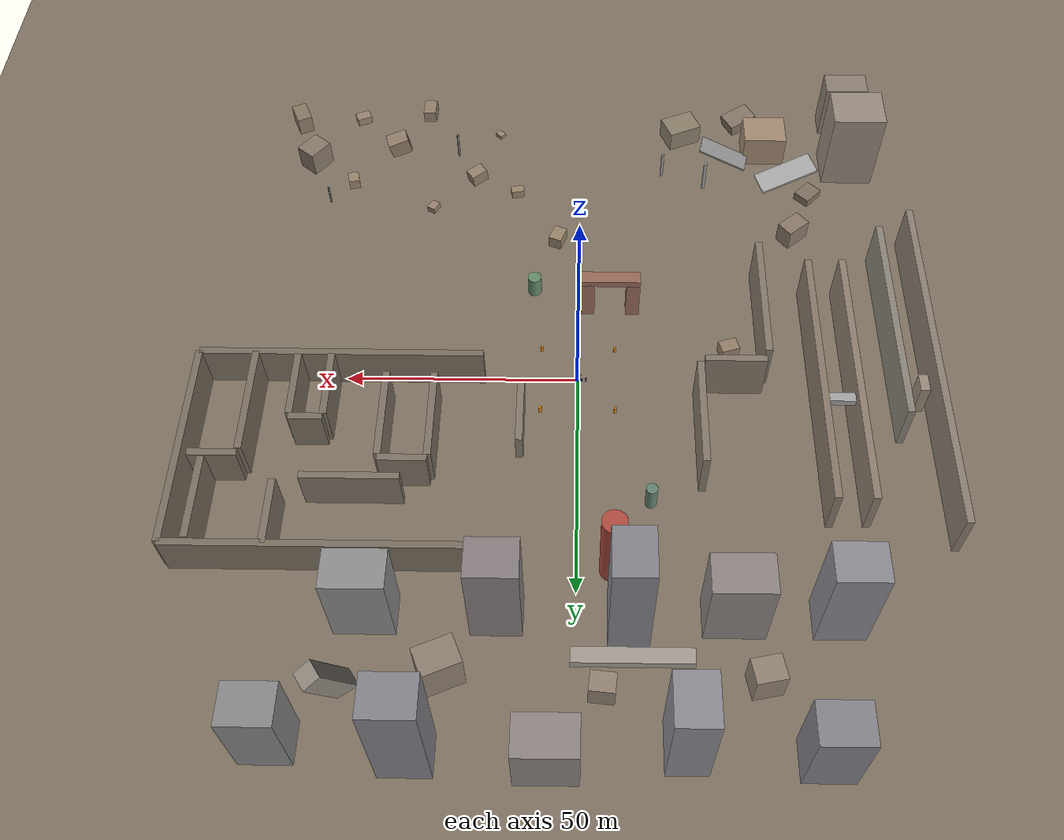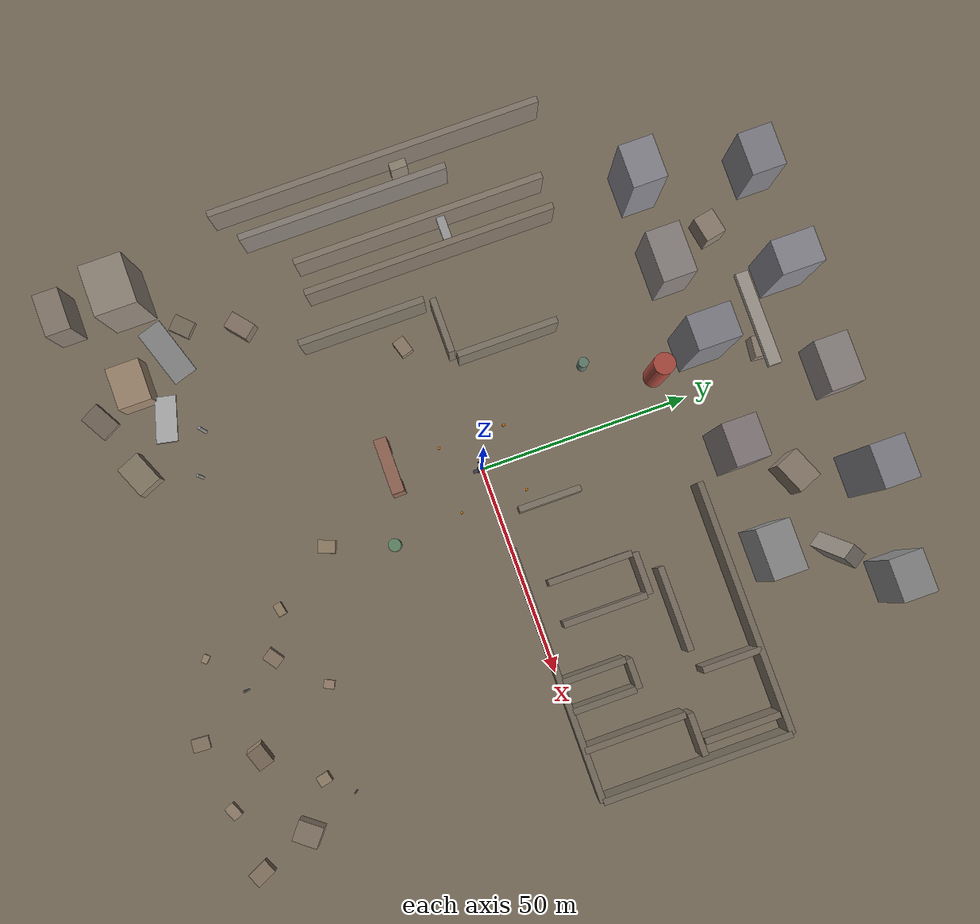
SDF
<?xml version="1.0" encoding="UTF-8"?>
<sdf version="1.9">
  <world name="disaster_response">
    <physics type="ode">
      <max_step_size>0.004</max_step_size>
      <real_time_factor>1.0</real_time_factor>
      <real_time_update_rate>250</real_time_update_rate>
    </physics>
    <!-- Required Gazebo Harmonic system plugins -->
    <plugin filename="gz-sim-physics-system" name="gz::sim::systems::Physics"/>
    <plugin filename="gz-sim-scene-broadcaster-system" name="gz::sim::systems::SceneBroadcaster"/>
    <plugin filename="gz-sim-user-commands-system" name="gz::sim::systems::UserCommands"/>
    <plugin filename="gz-sim-sensors-system" name="gz::sim::systems::Sensors">
      <render_engine>ogre2</render_engine>
    </plugin>
    <plugin filename="gz-sim-imu-system" name="gz::sim::systems::Imu"/>
    <plugin filename="gz-sim-contact-system" name="gz::sim::systems::Contact"/>

    <gravity>0 0 -9.8</gravity>
    <magnetic_field>6e-06 2.3e-05 -4.2e-05</magnetic_field>
    <atmosphere type="adiabatic"/>
    <scene>
      <grid>false</grid>
      <ambient>0.4 0.4 0.4 1</ambient>
      <background>0.7 0.7 0.7 1</background>
      <shadows>true</shadows>
    </scene>
    <light name="sunUTC" type="directional">
      <pose>0 0 500 0 -0 0</pose>
      <cast_shadows>true</cast_shadows>
      <intensity>0.9</intensity>
      <direction>0.3 0.5 -0.78</direction>
      <diffuse>0.88 0.85 0.80 1</diffuse>
      <specular>0.25 0.25 0.25 1</specular>
      <attenuation>
        <range>2000</range>
        <linear>0</linear>
        <constant>1</constant>
        <quadratic>0</quadratic>
      </attenuation>
      <spot>
        <inner_angle>0</inner_angle>
        <outer_angle>0</outer_angle>
        <falloff>0</falloff>
      </spot>
    </light>
    <spherical_coordinates>
      <surface_model>EARTH_WGS84</surface_model>
      <world_frame_orientation>ENU</world_frame_orientation>
      <latitude_deg>47.397971057728974</latitude_deg>
      <longitude_deg> 8.546163739800146</longitude_deg>
      <elevation>0</elevation>
    </spherical_coordinates>
    <model name="ground_plane">
      <static>true</static>
      <link name="link">
        <collision name="collision">
          <geometry>
            <plane>
              <normal>0 0 1</normal>
              <size>1 1</size>
            </plane>
          </geometry>
          <surface>
            <friction>
              <ode/>
            </friction>
            <bounce/>
            <contact/>
          </surface>
        </collision>
        <visual name="visual">
          <geometry>
            <plane>
              <normal>0 0 1</normal>
              <size>200 200</size>
            </plane>
          </geometry>
          <material>
            <ambient>0.45 0.40 0.35 1</ambient>
            <diffuse>0.50 0.45 0.38 1</diffuse>
            <specular>0.1 0.1 0.1 1</specular>
          </material>
        </visual>
        <pose>0 0 0 0 -0 0</pose>
        <inertial>
          <pose>0 0 0 0 -0 0</pose>
          <mass>1</mass>
          <inertia>
            <ixx>1</ixx>
            <ixy>0</ixy>
            <ixz>0</ixz>
            <iyy>1</iyy>
            <iyz>0</iyz>
            <izz>1</izz>
          </inertia>
        </inertial>
        <enable_wind>false</enable_wind>
      </link>
      <pose>0 0 0 0 -0 0</pose>
      <self_collide>false</self_collide>
    </model>

    <model name="spawn_pylon_ne">
      <pose>8 8 0.75 0 0 0</pose>
      <static>true</static>
      <link name="link">
      <collision name="collision">
        <geometry>
          <cylinder>
            <radius>0.3</radius>
            <length>1.5</length>
          </cylinder>
        </geometry>
      </collision>
      <visual name="visual">
        <geometry>
          <cylinder>
            <radius>0.3</radius>
            <length>1.5</length>
          </cylinder>
        </geometry>
        <material>
          <ambient>0.9 0.5 0.0 1</ambient>
          <diffuse>0.9 0.5 0.0 1</diffuse>
          <specular>0.5 0.5 0.5 1</specular>
        </material>
      </visual>
      </link>
    </model>
    <model name="spawn_pylon_nw">
      <pose>-8 8 0.75 0 0 0</pose>
      <static>true</static>
      <link name="link">
      <collision name="collision">
        <geometry>
          <cylinder>
            <radius>0.3</radius>
            <length>1.5</length>
          </cylinder>
        </geometry>
      </collision>
      <visual name="visual">
        <geometry>
          <cylinder>
            <radius>0.3</radius>
            <length>1.5</length>
          </cylinder>
        </geometry>
        <material>
          <ambient>0.9 0.5 0.0 1</ambient>
          <diffuse>0.9 0.5 0.0 1</diffuse>
          <specular>0.5 0.5 0.5 1</specular>
        </material>
      </visual>
      </link>
    </model>
    <model name="spawn_pylon_se">
      <pose>8 -8 0.75 0 0 0</pose>
      <static>true</static>
      <link name="link">
      <collision name="collision">
        <geometry>
          <cylinder>
            <radius>0.3</radius>
            <length>1.5</length>
          </cylinder>
        </geometry>
      </collision>
      <visual name="visual">
        <geometry>
          <cylinder>
            <radius>0.3</radius>
            <length>1.5</length>
          </cylinder>
        </geometry>
        <material>
          <ambient>0.9 0.5 0.0 1</ambient>
          <diffuse>0.9 0.5 0.0 1</diffuse>
          <specular>0.5 0.5 0.5 1</specular>
        </material>
      </visual>
      </link>
    </model>
    <model name="spawn_pylon_sw">
      <pose>-8 -8 0.75 0 0 0</pose>
      <static>true</static>
      <link name="link">
      <collision name="collision">
        <geometry>
          <cylinder>
            <radius>0.3</radius>
            <length>1.5</length>
          </cylinder>
        </geometry>
      </collision>
      <visual name="visual">
        <geometry>
          <cylinder>
            <radius>0.3</radius>
            <length>1.5</length>
          </cylinder>
        </geometry>
        <material>
          <ambient>0.9 0.5 0.0 1</ambient>
          <diffuse>0.9 0.5 0.0 1</diffuse>
          <specular>0.5 0.5 0.5 1</specular>
        </material>
      </visual>
      </link>
    </model>
    <model name="z1_building_a">
      <pose>-65 -65 10 0 0 0</pose>
      <static>true</static>
      <link name="link">
      <collision name="collision">
        <geometry>
          <box>
            <size>12 10 20</size>
          </box>
        </geometry>
      </collision>
      <visual name="visual">
        <geometry>
          <box>
            <size>12 10 20</size>
          </box>
        </geometry>
        <material>
          <ambient>0.5 0.45 0.4 1</ambient>
          <diffuse>0.6 0.55 0.5 1</diffuse>
          <specular>0.3 0.3 0.3 1</specular>
        </material>
      </visual>
      </link>
    </model>
    <model name="z1_building_b">
      <pose>-45 -70 4 0 0 0</pose>
      <static>true</static>
      <link name="link">
      <collision name="collision">
        <geometry>
          <box>
            <size>10 8 8</size>
          </box>
        </geometry>
      </collision>
      <visual name="visual">
        <geometry>
          <box>
            <size>10 8 8</size>
          </box>
        </geometry>
        <material>
          <ambient>0.55 0.48 0.40 1</ambient>
          <diffuse>0.65 0.55 0.45 1</diffuse>
          <specular>0.2 0.2 0.2 1</specular>
        </material>
      </visual>
      </link>
    </model>
    <model name="z1_building_c">
      <pose>-65 -80 7 0 0 0</pose>
      <static>true</static>
      <link name="link">
      <collision name="collision">
        <geometry>
          <box>
            <size>10 6 14</size>
          </box>
        </geometry>
      </collision>
      <visual name="visual">
        <geometry>
          <box>
            <size>10 6 14</size>
          </box>
        </geometry>
        <material>
          <ambient>0.4 0.38 0.35 1</ambient>
          <diffuse>0.55 0.50 0.45 1</diffuse>
          <specular>0.3 0.3 0.3 1</specular>
        </material>
      </visual>
      </link>
    </model>
    <model name="z1_collapsed_slab_1">
      <pose>-50 -60 3 0 0.26 0.3</pose>
      <static>true</static>
      <link name="link">
      <collision name="collision">
        <geometry>
          <box>
            <size>14 6 0.5</size>
          </box>
        </geometry>
      </collision>
      <visual name="visual">
        <geometry>
          <box>
            <size>14 6 0.5</size>
          </box>
        </geometry>
        <material>
          <ambient>0.5 0.5 0.5 1</ambient>
          <diffuse>0.65 0.65 0.65 1</diffuse>
          <specular>0.4 0.4 0.4 1</specular>
        </material>
      </visual>
      </link>
    </model>
    <model name="z1_collapsed_slab_2">
      <pose>-35 -65 4.5 0 -0.35 -0.2</pose>
      <static>true</static>
      <link name="link">
      <collision name="collision">
        <geometry>
          <box>
            <size>12 5 0.4</size>
          </box>
        </geometry>
      </collision>
      <visual name="visual">
        <geometry>
          <box>
            <size>12 5 0.4</size>
          </box>
        </geometry>
        <material>
          <ambient>0.5 0.5 0.5 1</ambient>
          <diffuse>0.65 0.65 0.65 1</diffuse>
          <specular>0.4 0.4 0.4 1</specular>
        </material>
      </visual>
      </link>
    </model>
    <model name="z1_building_d">
      <pose>-25 -75 2.5 0 0 0.4</pose>
      <static>true</static>
      <link name="link">
      <collision name="collision">
        <geometry>
          <box>
            <size>8 6 5</size>
          </box>
        </geometry>
      </collision>
      <visual name="visual">
        <geometry>
          <box>
            <size>8 6 5</size>
          </box>
        </geometry>
        <material>
          <ambient>0.45 0.40 0.35 1</ambient>
          <diffuse>0.55 0.50 0.42 1</diffuse>
          <specular>0.2 0.2 0.2 1</specular>
        </material>
      </visual>
      </link>
    </model>
    <model name="z1_debris_1">
      <pose>-55 -55 1.0 0 0 0.8</pose>
      <static>true</static>
      <link name="link">
      <collision name="collision">
        <geometry>
          <box>
            <size>5 4 2</size>
          </box>
        </geometry>
      </collision>
      <visual name="visual">
        <geometry>
          <box>
            <size>5 4 2</size>
          </box>
        </geometry>
        <material>
          <ambient>0.4 0.38 0.33 1</ambient>
          <diffuse>0.5 0.45 0.38 1</diffuse>
          <specular>0.15 0.15 0.15 1</specular>
        </material>
      </visual>
      </link>
    </model>
    <model name="z1_debris_2">
      <pose>-40 -80 1.5 0 0.15 0.5</pose>
      <static>true</static>
      <link name="link">
      <collision name="collision">
        <geometry>
          <box>
            <size>7 5 3</size>
          </box>
        </geometry>
      </collision>
      <visual name="visual">
        <geometry>
          <box>
            <size>7 5 3</size>
          </box>
        </geometry>
        <material>
          <ambient>0.42 0.38 0.34 1</ambient>
          <diffuse>0.52 0.46 0.40 1</diffuse>
          <specular>0.15 0.15 0.15 1</specular>
        </material>
      </visual>
      </link>
    </model>
    <model name="z1_column_1">
      <pose>-30 -58 4 0 0 0</pose>
      <static>true</static>
      <link name="link">
      <collision name="collision">
        <geometry>
          <cylinder>
            <radius>0.4</radius>
            <length>8</length>
          </cylinder>
        </geometry>
      </collision>
      <visual name="visual">
        <geometry>
          <cylinder>
            <radius>0.4</radius>
            <length>8</length>
          </cylinder>
        </geometry>
        <material>
          <ambient>0.5 0.5 0.5 1</ambient>
          <diffuse>0.6 0.6 0.6 1</diffuse>
          <specular>0.3 0.3 0.3 1</specular>
        </material>
      </visual>
      </link>
    </model>
    <model name="z1_column_2">
      <pose>-20 -62 3.5 0 0 0</pose>
      <static>true</static>
      <link name="link">
      <collision name="collision">
        <geometry>
          <cylinder>
            <radius>0.35</radius>
            <length>7</length>
          </cylinder>
        </geometry>
      </collision>
      <visual name="visual">
        <geometry>
          <cylinder>
            <radius>0.35</radius>
            <length>7</length>
          </cylinder>
        </geometry>
        <material>
          <ambient>0.48 0.48 0.48 1</ambient>
          <diffuse>0.58 0.58 0.58 1</diffuse>
          <specular>0.3 0.3 0.3 1</specular>
        </material>
      </visual>
      </link>
    </model>
    <model name="z2_rubble_01">
      <pose>15 -55 1.0 0 0 0.2</pose>
      <static>true</static>
      <link name="link">
      <collision name="collision">
        <geometry>
          <box>
            <size>3 2 2</size>
          </box>
        </geometry>
      </collision>
      <visual name="visual">
        <geometry>
          <box>
            <size>3 2 2</size>
          </box>
        </geometry>
        <material>
          <ambient>0.5 0.42 0.35 1</ambient>
          <diffuse>0.6 0.52 0.42 1</diffuse>
          <specular>0.15 0.15 0.15 1</specular>
        </material>
      </visual>
      </link>
    </model>
    <model name="z2_rubble_02">
      <pose>25 -60 1.5 0 0.1 0.6</pose>
      <static>true</static>
      <link name="link">
      <collision name="collision">
        <geometry>
          <box>
            <size>4 3 3</size>
          </box>
        </geometry>
      </collision>
      <visual name="visual">
        <geometry>
          <box>
            <size>4 3 3</size>
          </box>
        </geometry>
        <material>
          <ambient>0.48 0.42 0.36 1</ambient>
          <diffuse>0.58 0.50 0.42 1</diffuse>
          <specular>0.15 0.15 0.15 1</specular>
        </material>
      </visual>
      </link>
    </model>
    <model name="z2_rubble_03">
      <pose>35 -50 0.75 0 0 1.1</pose>
      <static>true</static>
      <link name="link">
      <collision name="collision">
        <geometry>
          <box>
            <size>2.5 2 1.5</size>
          </box>
        </geometry>
      </collision>
      <visual name="visual">
        <geometry>
          <box>
            <size>2.5 2 1.5</size>
          </box>
        </geometry>
        <material>
          <ambient>0.52 0.45 0.38 1</ambient>
          <diffuse>0.62 0.52 0.44 1</diffuse>
          <specular>0.15 0.15 0.15 1</specular>
        </material>
      </visual>
      </link>
    </model>
    <model name="z2_rubble_04">
      <pose>45 -70 2.0 0 0.2 0.3</pose>
      <static>true</static>
      <link name="link">
      <collision name="collision">
        <geometry>
          <box>
            <size>5 4 4</size>
          </box>
        </geometry>
      </collision>
      <visual name="visual">
        <geometry>
          <box>
            <size>5 4 4</size>
          </box>
        </geometry>
        <material>
          <ambient>0.46 0.40 0.34 1</ambient>
          <diffuse>0.56 0.48 0.40 1</diffuse>
          <specular>0.15 0.15 0.15 1</specular>
        </material>
      </visual>
      </link>
    </model>
    <model name="z2_rubble_05">
      <pose>55 -58 1.25 0 0 1.8</pose>
      <static>true</static>
      <link name="link">
      <collision name="collision">
        <geometry>
          <box>
            <size>3 2.5 2.5</size>
          </box>
        </geometry>
      </collision>
      <visual name="visual">
        <geometry>
          <box>
            <size>3 2.5 2.5</size>
          </box>
        </geometry>
        <material>
          <ambient>0.50 0.44 0.37 1</ambient>
          <diffuse>0.60 0.52 0.43 1</diffuse>
          <specular>0.15 0.15 0.15 1</specular>
        </material>
      </visual>
      </link>
    </model>
    <model name="z2_rubble_06">
      <pose>65 -65 3.0 0 0 0.9</pose>
      <static>true</static>
      <link name="link">
      <collision name="collision">
        <geometry>
          <box>
            <size>6 5 6</size>
          </box>
        </geometry>
      </collision>
      <visual name="visual">
        <geometry>
          <box>
            <size>6 5 6</size>
          </box>
        </geometry>
        <material>
          <ambient>0.44 0.40 0.35 1</ambient>
          <diffuse>0.54 0.48 0.42 1</diffuse>
          <specular>0.15 0.15 0.15 1</specular>
        </material>
      </visual>
      </link>
    </model>
    <model name="z2_rubble_07">
      <pose>20 -75 0.5 0 0 2.4</pose>
      <static>true</static>
      <link name="link">
      <collision name="collision">
        <geometry>
          <box>
            <size>2 1.5 1</size>
          </box>
        </geometry>
      </collision>
      <visual name="visual">
        <geometry>
          <box>
            <size>2 1.5 1</size>
          </box>
        </geometry>
        <material>
          <ambient>0.52 0.46 0.38 1</ambient>
          <diffuse>0.62 0.54 0.44 1</diffuse>
          <specular>0.15 0.15 0.15 1</specular>
        </material>
      </visual>
      </link>
    </model>
    <model name="z2_rubble_08">
      <pose>38 -82 1.75 0 0.15 1.5</pose>
      <static>true</static>
      <link name="link">
      <collision name="collision">
        <geometry>
          <box>
            <size>4 3 3.5</size>
          </box>
        </geometry>
      </collision>
      <visual name="visual">
        <geometry>
          <box>
            <size>4 3 3.5</size>
          </box>
        </geometry>
        <material>
          <ambient>0.47 0.42 0.36 1</ambient>
          <diffuse>0.57 0.50 0.42 1</diffuse>
          <specular>0.15 0.15 0.15 1</specular>
        </material>
      </visual>
      </link>
    </model>
    <model name="z2_rubble_09">
      <pose>55 -80 1.0 0 0 0.4</pose>
      <static>true</static>
      <link name="link">
      <collision name="collision">
        <geometry>
          <box>
            <size>3.5 2.5 2</size>
          </box>
        </geometry>
      </collision>
      <visual name="visual">
        <geometry>
          <box>
            <size>3.5 2.5 2</size>
          </box>
        </geometry>
        <material>
          <ambient>0.50 0.44 0.38 1</ambient>
          <diffuse>0.60 0.52 0.44 1</diffuse>
          <specular>0.15 0.15 0.15 1</specular>
        </material>
      </visual>
      </link>
    </model>
    <model name="z2_rubble_10">
      <pose>70 -78 2.5 0 0.1 2.0</pose>
      <static>true</static>
      <link name="link">
      <collision name="collision">
        <geometry>
          <box>
            <size>5 3.5 5</size>
          </box>
        </geometry>
      </collision>
      <visual name="visual">
        <geometry>
          <box>
            <size>5 3.5 5</size>
          </box>
        </geometry>
        <material>
          <ambient>0.45 0.40 0.34 1</ambient>
          <diffuse>0.55 0.48 0.40 1</diffuse>
          <specular>0.15 0.15 0.15 1</specular>
        </material>
      </visual>
      </link>
    </model>
    <model name="z2_pole_1">
      <pose>30 -68 3.5 0 0 0</pose>
      <static>true</static>
      <link name="link">
      <collision name="collision">
        <geometry>
          <cylinder>
            <radius>0.25</radius>
            <length>7</length>
          </cylinder>
        </geometry>
      </collision>
      <visual name="visual">
        <geometry>
          <cylinder>
            <radius>0.25</radius>
            <length>7</length>
          </cylinder>
        </geometry>
        <material>
          <ambient>0.35 0.35 0.35 1</ambient>
          <diffuse>0.45 0.45 0.45 1</diffuse>
          <specular>0.3 0.3 0.3 1</specular>
        </material>
      </visual>
      </link>
    </model>
    <model name="z2_pole_2">
      <pose>60 -52 2.5 0 0 0</pose>
      <static>true</static>
      <link name="link">
      <collision name="collision">
        <geometry>
          <cylinder>
            <radius>0.2</radius>
            <length>5</length>
          </cylinder>
        </geometry>
      </collision>
      <visual name="visual">
        <geometry>
          <cylinder>
            <radius>0.2</radius>
            <length>5</length>
          </cylinder>
        </geometry>
        <material>
          <ambient>0.35 0.35 0.35 1</ambient>
          <diffuse>0.45 0.45 0.45 1</diffuse>
          <specular>0.3 0.3 0.3 1</specular>
        </material>
      </visual>
      </link>
    </model>
    <model name="z3_wall_west">
      <pose>-75 0 6 0 0 0</pose>
      <static>true</static>
      <link name="link">
      <collision name="collision">
        <geometry>
          <box>
            <size>1.5 80 12</size>
          </box>
        </geometry>
      </collision>
      <visual name="visual">
        <geometry>
          <box>
            <size>1.5 80 12</size>
          </box>
        </geometry>
        <material>
          <ambient>0.4 0.38 0.35 1</ambient>
          <diffuse>0.55 0.50 0.45 1</diffuse>
          <specular>0.2 0.2 0.2 1</specular>
        </material>
      </visual>
      </link>
    </model>
    <model name="z3_wall_c1_east">
      <pose>-67.5 -10 6 0 0 0</pose>
      <static>true</static>
      <link name="link">
      <collision name="collision">
        <geometry>
          <box>
            <size>1.5 50 12</size>
          </box>
        </geometry>
      </collision>
      <visual name="visual">
        <geometry>
          <box>
            <size>1.5 50 12</size>
          </box>
        </geometry>
        <material>
          <ambient>0.42 0.40 0.37 1</ambient>
          <diffuse>0.55 0.52 0.48 1</diffuse>
          <specular>0.2 0.2 0.2 1</specular>
        </material>
      </visual>
      </link>
    </model>
    <model name="z3_chicane_1">
      <pose>-72.5 5 4 0 0 0</pose>
      <static>true</static>
      <link name="link">
      <collision name="collision">
        <geometry>
          <box>
            <size>2 4 8</size>
          </box>
        </geometry>
      </collision>
      <visual name="visual">
        <geometry>
          <box>
            <size>2 4 8</size>
          </box>
        </geometry>
        <material>
          <ambient>0.5 0.45 0.40 1</ambient>
          <diffuse>0.6 0.55 0.48 1</diffuse>
          <specular>0.2 0.2 0.2 1</specular>
        </material>
      </visual>
      </link>
    </model>
    <model name="z3_wall_c2_west">
      <pose>-58 5 6 0 0 0</pose>
      <static>true</static>
      <link name="link">
      <collision name="collision">
        <geometry>
          <box>
            <size>1.5 60 12</size>
          </box>
        </geometry>
      </collision>
      <visual name="visual">
        <geometry>
          <box>
            <size>1.5 60 12</size>
          </box>
        </geometry>
        <material>
          <ambient>0.44 0.40 0.36 1</ambient>
          <diffuse>0.56 0.50 0.44 1</diffuse>
          <specular>0.2 0.2 0.2 1</specular>
        </material>
      </visual>
      </link>
    </model>
    <model name="z3_wall_c2_east">
      <pose>-50.5 5 6 0 0 0</pose>
      <static>true</static>
      <link name="link">
      <collision name="collision">
        <geometry>
          <box>
            <size>1.5 60 12</size>
          </box>
        </geometry>
      </collision>
      <visual name="visual">
        <geometry>
          <box>
            <size>1.5 60 12</size>
          </box>
        </geometry>
        <material>
          <ambient>0.42 0.39 0.35 1</ambient>
          <diffuse>0.54 0.48 0.42 1</diffuse>
          <specular>0.2 0.2 0.2 1</specular>
        </material>
      </visual>
      </link>
    </model>
    <model name="z3_overhead_beam">
      <pose>-54.25 10 9 0 0 0</pose>
      <static>true</static>
      <link name="link">
      <collision name="collision">
        <geometry>
          <box>
            <size>6 2 1.5</size>
          </box>
        </geometry>
      </collision>
      <visual name="visual">
        <geometry>
          <box>
            <size>6 2 1.5</size>
          </box>
        </geometry>
        <material>
          <ambient>0.5 0.5 0.5 1</ambient>
          <diffuse>0.65 0.65 0.65 1</diffuse>
          <specular>0.4 0.4 0.4 1</specular>
        </material>
      </visual>
      </link>
    </model>
    <model name="z3_wall_c3_south">
      <pose>-40 -15 6 0 0 0</pose>
      <static>true</static>
      <link name="link">
      <collision name="collision">
        <geometry>
          <box>
            <size>1.5 30 12</size>
          </box>
        </geometry>
      </collision>
      <visual name="visual">
        <geometry>
          <box>
            <size>1.5 30 12</size>
          </box>
        </geometry>
        <material>
          <ambient>0.40 0.38 0.34 1</ambient>
          <diffuse>0.52 0.48 0.42 1</diffuse>
          <specular>0.2 0.2 0.2 1</specular>
        </material>
      </visual>
      </link>
    </model>
    <model name="z3_wall_c3_corner">
      <pose>-33 2 6 0 0 0</pose>
      <static>true</static>
      <link name="link">
      <collision name="collision">
        <geometry>
          <box>
            <size>13 1.5 12</size>
          </box>
        </geometry>
      </collision>
      <visual name="visual">
        <geometry>
          <box>
            <size>13 1.5 12</size>
          </box>
        </geometry>
        <material>
          <ambient>0.40 0.38 0.34 1</ambient>
          <diffuse>0.52 0.48 0.42 1</diffuse>
          <specular>0.2 0.2 0.2 1</specular>
        </material>
      </visual>
      </link>
    </model>
    <model name="z3_wall_c3_north">
      <pose>-25.5 15 6 0 0 0</pose>
      <static>true</static>
      <link name="link">
      <collision name="collision">
        <geometry>
          <box>
            <size>1.5 24 12</size>
          </box>
        </geometry>
      </collision>
      <visual name="visual">
        <geometry>
          <box>
            <size>1.5 24 12</size>
          </box>
        </geometry>
        <material>
          <ambient>0.40 0.38 0.34 1</ambient>
          <diffuse>0.52 0.48 0.42 1</diffuse>
          <specular>0.2 0.2 0.2 1</specular>
        </material>
      </visual>
      </link>
    </model>
    <model name="z3_corridor_rubble">
      <pose>-33 -8 1.5 0 0 0.3</pose>
      <static>true</static>
      <link name="link">
      <collision name="collision">
        <geometry>
          <box>
            <size>4 3 3</size>
          </box>
        </geometry>
      </collision>
      <visual name="visual">
        <geometry>
          <box>
            <size>4 3 3</size>
          </box>
        </geometry>
        <material>
          <ambient>0.48 0.42 0.36 1</ambient>
          <diffuse>0.58 0.50 0.42 1</diffuse>
          <specular>0.15 0.15 0.15 1</specular>
        </material>
      </visual>
      </link>
    </model>
    <model name="z4_boundary_south">
      <pose>50 0 5 0 0 0</pose>
      <static>true</static>
      <link name="link">
      <collision name="collision">
        <geometry>
          <box>
            <size>60 1.5 10</size>
          </box>
        </geometry>
      </collision>
      <visual name="visual">
        <geometry>
          <box>
            <size>60 1.5 10</size>
          </box>
        </geometry>
        <material>
          <ambient>0.35 0.33 0.30 1</ambient>
          <diffuse>0.48 0.44 0.38 1</diffuse>
          <specular>0.2 0.2 0.2 1</specular>
        </material>
      </visual>
      </link>
    </model>
    <model name="z4_boundary_north">
      <pose>50 45 5 0 0 0</pose>
      <static>true</static>
      <link name="link">
      <collision name="collision">
        <geometry>
          <box>
            <size>60 1.5 10</size>
          </box>
        </geometry>
      </collision>
      <visual name="visual">
        <geometry>
          <box>
            <size>60 1.5 10</size>
          </box>
        </geometry>
        <material>
          <ambient>0.35 0.33 0.30 1</ambient>
          <diffuse>0.48 0.44 0.38 1</diffuse>
          <specular>0.2 0.2 0.2 1</specular>
        </material>
      </visual>
      </link>
    </model>
    <model name="z4_boundary_east">
      <pose>80 22.5 5 0 0 0</pose>
      <static>true</static>
      <link name="link">
      <collision name="collision">
        <geometry>
          <box>
            <size>1.5 45 10</size>
          </box>
        </geometry>
      </collision>
      <visual name="visual">
        <geometry>
          <box>
            <size>1.5 45 10</size>
          </box>
        </geometry>
        <material>
          <ambient>0.35 0.33 0.30 1</ambient>
          <diffuse>0.48 0.44 0.38 1</diffuse>
          <specular>0.2 0.2 0.2 1</specular>
        </material>
      </visual>
      </link>
    </model>
    <model name="z4_de1_left">
      <pose>30 15 5 0 0 0</pose>
      <static>true</static>
      <link name="link">
      <collision name="collision">
        <geometry>
          <box>
            <size>1.5 20 10</size>
          </box>
        </geometry>
      </collision>
      <visual name="visual">
        <geometry>
          <box>
            <size>1.5 20 10</size>
          </box>
        </geometry>
        <material>
          <ambient>0.38 0.35 0.32 1</ambient>
          <diffuse>0.50 0.45 0.40 1</diffuse>
          <specular>0.2 0.2 0.2 1</specular>
        </material>
      </visual>
      </link>
    </model>
    <model name="z4_de1_right">
      <pose>40 15 5 0 0 0</pose>
      <static>true</static>
      <link name="link">
      <collision name="collision">
        <geometry>
          <box>
            <size>1.5 20 10</size>
          </box>
        </geometry>
      </collision>
      <visual name="visual">
        <geometry>
          <box>
            <size>1.5 20 10</size>
          </box>
        </geometry>
        <material>
          <ambient>0.38 0.35 0.32 1</ambient>
          <diffuse>0.50 0.45 0.40 1</diffuse>
          <specular>0.2 0.2 0.2 1</specular>
        </material>
      </visual>
      </link>
    </model>
    <model name="z4_de1_back">
      <pose>35 25.75 5 0 0 0</pose>
      <static>true</static>
      <link name="link">
      <collision name="collision">
        <geometry>
          <box>
            <size>10 1.5 10</size>
          </box>
        </geometry>
      </collision>
      <visual name="visual">
        <geometry>
          <box>
            <size>10 1.5 10</size>
          </box>
        </geometry>
        <material>
          <ambient>0.38 0.35 0.32 1</ambient>
          <diffuse>0.50 0.45 0.40 1</diffuse>
          <specular>0.2 0.2 0.2 1</specular>
        </material>
      </visual>
      </link>
    </model>
    <model name="z4_de2_left">
      <pose>52 8 5 0 0 0</pose>
      <static>true</static>
      <link name="link">
      <collision name="collision">
        <geometry>
          <box>
            <size>1.5 15 10</size>
          </box>
        </geometry>
      </collision>
      <visual name="visual">
        <geometry>
          <box>
            <size>1.5 15 10</size>
          </box>
        </geometry>
        <material>
          <ambient>0.36 0.34 0.31 1</ambient>
          <diffuse>0.48 0.44 0.38 1</diffuse>
          <specular>0.2 0.2 0.2 1</specular>
        </material>
      </visual>
      </link>
    </model>
    <model name="z4_de2_right">
      <pose>59 8 5 0 0 0</pose>
      <static>true</static>
      <link name="link">
      <collision name="collision">
        <geometry>
          <box>
            <size>1.5 15 10</size>
          </box>
        </geometry>
      </collision>
      <visual name="visual">
        <geometry>
          <box>
            <size>1.5 15 10</size>
          </box>
        </geometry>
        <material>
          <ambient>0.36 0.34 0.31 1</ambient>
          <diffuse>0.48 0.44 0.38 1</diffuse>
          <specular>0.2 0.2 0.2 1</specular>
        </material>
      </visual>
      </link>
    </model>
    <model name="z4_de2_back">
      <pose>55.5 16.25 5 0 0 0</pose>
      <static>true</static>
      <link name="link">
      <collision name="collision">
        <geometry>
          <box>
            <size>7 1.5 10</size>
          </box>
        </geometry>
      </collision>
      <visual name="visual">
        <geometry>
          <box>
            <size>7 1.5 10</size>
          </box>
        </geometry>
        <material>
          <ambient>0.36 0.34 0.31 1</ambient>
          <diffuse>0.48 0.44 0.38 1</diffuse>
          <specular>0.2 0.2 0.2 1</specular>
        </material>
      </visual>
      </link>
    </model>
    <model name="z4_de3_entry">
      <pose>68 12 5 0 0 0</pose>
      <static>true</static>
      <link name="link">
      <collision name="collision">
        <geometry>
          <box>
            <size>1.5 24 10</size>
          </box>
        </geometry>
      </collision>
      <visual name="visual">
        <geometry>
          <box>
            <size>1.5 24 10</size>
          </box>
        </geometry>
        <material>
          <ambient>0.37 0.34 0.31 1</ambient>
          <diffuse>0.49 0.44 0.38 1</diffuse>
          <specular>0.2 0.2 0.2 1</specular>
        </material>
      </visual>
      </link>
    </model>
    <model name="z4_de3_turn">
      <pose>73 25 5 0 0 0</pose>
      <static>true</static>
      <link name="link">
      <collision name="collision">
        <geometry>
          <box>
            <size>10 1.5 10</size>
          </box>
        </geometry>
      </collision>
      <visual name="visual">
        <geometry>
          <box>
            <size>10 1.5 10</size>
          </box>
        </geometry>
        <material>
          <ambient>0.37 0.34 0.31 1</ambient>
          <diffuse>0.49 0.44 0.38 1</diffuse>
          <specular>0.2 0.2 0.2 1</specular>
        </material>
      </visual>
      </link>
    </model>
    <model name="z4_de3_back">
      <pose>75 35 5 0 0 0</pose>
      <static>true</static>
      <link name="link">
      <collision name="collision">
        <geometry>
          <box>
            <size>1.5 18 10</size>
          </box>
        </geometry>
      </collision>
      <visual name="visual">
        <geometry>
          <box>
            <size>1.5 18 10</size>
          </box>
        </geometry>
        <material>
          <ambient>0.37 0.34 0.31 1</ambient>
          <diffuse>0.49 0.44 0.38 1</diffuse>
          <specular>0.2 0.2 0.2 1</specular>
        </material>
      </visual>
      </link>
    </model>
    <model name="z4_divider_1">
      <pose>45 30 5 0 0 0</pose>
      <static>true</static>
      <link name="link">
      <collision name="collision">
        <geometry>
          <box>
            <size>20 1.5 10</size>
          </box>
        </geometry>
      </collision>
      <visual name="visual">
        <geometry>
          <box>
            <size>20 1.5 10</size>
          </box>
        </geometry>
        <material>
          <ambient>0.38 0.35 0.32 1</ambient>
          <diffuse>0.50 0.45 0.40 1</diffuse>
          <specular>0.2 0.2 0.2 1</specular>
        </material>
      </visual>
      </link>
    </model>
    <model name="z4_divider_2">
      <pose>60 38 5 0 0 0</pose>
      <static>true</static>
      <link name="link">
      <collision name="collision">
        <geometry>
          <box>
            <size>1.5 14 10</size>
          </box>
        </geometry>
      </collision>
      <visual name="visual">
        <geometry>
          <box>
            <size>1.5 14 10</size>
          </box>
        </geometry>
        <material>
          <ambient>0.38 0.35 0.32 1</ambient>
          <diffuse>0.50 0.45 0.40 1</diffuse>
          <specular>0.2 0.2 0.2 1</specular>
        </material>
      </visual>
      </link>
    </model>
    <model name="z5_tower_s1">
      <pose>-50 55 12.5 0 0 0</pose>
      <static>true</static>
      <link name="link">
      <collision name="collision">
        <geometry>
          <box>
            <size>10 8 25</size>
          </box>
        </geometry>
      </collision>
      <visual name="visual">
        <geometry>
          <box>
            <size>10 8 25</size>
          </box>
        </geometry>
        <material>
          <ambient>0.40 0.40 0.42 1</ambient>
          <diffuse>0.55 0.55 0.58 1</diffuse>
          <specular>0.4 0.4 0.4 1</specular>
        </material>
      </visual>
      </link>
    </model>
    <model name="z5_tower_s2">
      <pose>-30 55 10 0 0 0</pose>
      <static>true</static>
      <link name="link">
      <collision name="collision">
        <geometry>
          <box>
            <size>12 8 20</size>
          </box>
        </geometry>
      </collision>
      <visual name="visual">
        <geometry>
          <box>
            <size>12 8 20</size>
          </box>
        </geometry>
        <material>
          <ambient>0.42 0.40 0.40 1</ambient>
          <diffuse>0.56 0.53 0.52 1</diffuse>
          <specular>0.4 0.4 0.4 1</specular>
        </material>
      </visual>
      </link>
    </model>
    <model name="z5_tower_s3">
      <pose>-10 56 15 0 0 0</pose>
      <static>true</static>
      <link name="link">
      <collision name="collision">
        <geometry>
          <box>
            <size>8 10 30</size>
          </box>
        </geometry>
      </collision>
      <visual name="visual">
        <geometry>
          <box>
            <size>8 10 30</size>
          </box>
        </geometry>
        <material>
          <ambient>0.38 0.38 0.40 1</ambient>
          <diffuse>0.52 0.52 0.55 1</diffuse>
          <specular>0.4 0.4 0.4 1</specular>
        </material>
      </visual>
      </link>
    </model>
    <model name="z5_tower_s4">
      <pose>15 55 12.5 0 0 0</pose>
      <static>true</static>
      <link name="link">
      <collision name="collision">
        <geometry>
          <box>
            <size>10 8 25</size>
          </box>
        </geometry>
      </collision>
      <visual name="visual">
        <geometry>
          <box>
            <size>10 8 25</size>
          </box>
        </geometry>
        <material>
          <ambient>0.40 0.38 0.38 1</ambient>
          <diffuse>0.54 0.50 0.50 1</diffuse>
          <specular>0.4 0.4 0.4 1</specular>
        </material>
      </visual>
      </link>
    </model>
    <model name="z5_tower_s5">
      <pose>40 55 10 0 0 0</pose>
      <static>true</static>
      <link name="link">
      <collision name="collision">
        <geometry>
          <box>
            <size>12 8 20</size>
          </box>
        </geometry>
      </collision>
      <visual name="visual">
        <geometry>
          <box>
            <size>12 8 20</size>
          </box>
        </geometry>
        <material>
          <ambient>0.42 0.42 0.42 1</ambient>
          <diffuse>0.56 0.56 0.56 1</diffuse>
          <specular>0.4 0.4 0.4 1</specular>
        </material>
      </visual>
      </link>
    </model>
    <model name="z5_tower_n1">
      <pose>-45 82 10 0 0 0</pose>
      <static>true</static>
      <link name="link">
      <collision name="collision">
        <geometry>
          <box>
            <size>10 8 20</size>
          </box>
        </geometry>
      </collision>
      <visual name="visual">
        <geometry>
          <box>
            <size>10 8 20</size>
          </box>
        </geometry>
        <material>
          <ambient>0.38 0.38 0.40 1</ambient>
          <diffuse>0.52 0.52 0.55 1</diffuse>
          <specular>0.4 0.4 0.4 1</specular>
        </material>
      </visual>
      </link>
    </model>
    <model name="z5_tower_n2">
      <pose>-20 80 12.5 0 0 0</pose>
      <static>true</static>
      <link name="link">
      <collision name="collision">
        <geometry>
          <box>
            <size>8 10 25</size>
          </box>
        </geometry>
      </collision>
      <visual name="visual">
        <geometry>
          <box>
            <size>8 10 25</size>
          </box>
        </geometry>
        <material>
          <ambient>0.40 0.40 0.42 1</ambient>
          <diffuse>0.55 0.55 0.58 1</diffuse>
          <specular>0.4 0.4 0.4 1</specular>
        </material>
      </visual>
      </link>
    </model>
    <model name="z5_tower_n3">
      <pose>5 83 7.5 0 0 0</pose>
      <static>true</static>
      <link name="link">
      <collision name="collision">
        <geometry>
          <box>
            <size>12 8 15</size>
          </box>
        </geometry>
      </collision>
      <visual name="visual">
        <geometry>
          <box>
            <size>12 8 15</size>
          </box>
        </geometry>
        <material>
          <ambient>0.42 0.40 0.40 1</ambient>
          <diffuse>0.56 0.53 0.52 1</diffuse>
          <specular>0.4 0.4 0.4 1</specular>
        </material>
      </visual>
      </link>
    </model>
    <model name="z5_tower_n4">
      <pose>30 82 15 0 0 0</pose>
      <static>true</static>
      <link name="link">
      <collision name="collision">
        <geometry>
          <box>
            <size>10 8 30</size>
          </box>
        </geometry>
      </collision>
      <visual name="visual">
        <geometry>
          <box>
            <size>10 8 30</size>
          </box>
        </geometry>
        <material>
          <ambient>0.38 0.38 0.40 1</ambient>
          <diffuse>0.52 0.52 0.55 1</diffuse>
          <specular>0.4 0.4 0.4 1</specular>
        </material>
      </visual>
      </link>
    </model>
    <model name="z5_tower_n5">
      <pose>55 80 10 0 0 0</pose>
      <static>true</static>
      <link name="link">
      <collision name="collision">
        <geometry>
          <box>
            <size>10 8 20</size>
          </box>
        </geometry>
      </collision>
      <visual name="visual">
        <geometry>
          <box>
            <size>10 8 20</size>
          </box>
        </geometry>
        <material>
          <ambient>0.40 0.40 0.40 1</ambient>
          <diffuse>0.54 0.54 0.54 1</diffuse>
          <specular>0.4 0.4 0.4 1</specular>
        </material>
      </visual>
      </link>
    </model>
    <model name="z5_canyon_block_1">
      <pose>-35 68 4 0 0 0.2</pose>
      <static>true</static>
      <link name="link">
      <collision name="collision">
        <geometry>
          <box>
            <size>6 5 8</size>
          </box>
        </geometry>
      </collision>
      <visual name="visual">
        <geometry>
          <box>
            <size>6 5 8</size>
          </box>
        </geometry>
        <material>
          <ambient>0.45 0.42 0.38 1</ambient>
          <diffuse>0.58 0.52 0.46 1</diffuse>
          <specular>0.3 0.3 0.3 1</specular>
        </material>
      </visual>
      </link>
    </model>
    <model name="z5_canyon_block_2">
      <pose>-5 70 3 0 0 -0.1</pose>
      <static>true</static>
      <link name="link">
      <collision name="collision">
        <geometry>
          <box>
            <size>5 4 6</size>
          </box>
        </geometry>
      </collision>
      <visual name="visual">
        <geometry>
          <box>
            <size>5 4 6</size>
          </box>
        </geometry>
        <material>
          <ambient>0.46 0.42 0.38 1</ambient>
          <diffuse>0.58 0.52 0.46 1</diffuse>
          <specular>0.3 0.3 0.3 1</specular>
        </material>
      </visual>
      </link>
    </model>
    <model name="z5_canyon_block_3">
      <pose>25 67 5 0 0 0.4</pose>
      <static>true</static>
      <link name="link">
      <collision name="collision">
        <geometry>
          <box>
            <size>8 6 10</size>
          </box>
        </geometry>
      </collision>
      <visual name="visual">
        <geometry>
          <box>
            <size>8 6 10</size>
          </box>
        </geometry>
        <material>
          <ambient>0.44 0.40 0.36 1</ambient>
          <diffuse>0.56 0.50 0.44 1</diffuse>
          <specular>0.3 0.3 0.3 1</specular>
        </material>
      </visual>
      </link>
    </model>
    <model name="z5_skybridge">
      <pose>-10 69 15 0 0 0</pose>
      <static>true</static>
      <link name="link">
      <collision name="collision">
        <geometry>
          <box>
            <size>22 3 2</size>
          </box>
        </geometry>
      </collision>
      <visual name="visual">
        <geometry>
          <box>
            <size>22 3 2</size>
          </box>
        </geometry>
        <material>
          <ambient>0.5 0.48 0.45 1</ambient>
          <diffuse>0.65 0.62 0.58 1</diffuse>
          <specular>0.5 0.5 0.5 1</specular>
        </material>
      </visual>
      </link>
    </model>
    <model name="z5_fallen_section">
      <pose>45 70 5 0 0.44 0.6</pose>
      <static>true</static>
      <link name="link">
      <collision name="collision">
        <geometry>
          <box>
            <size>4 4 14</size>
          </box>
        </geometry>
      </collision>
      <visual name="visual">
        <geometry>
          <box>
            <size>4 4 14</size>
          </box>
        </geometry>
        <material>
          <ambient>0.42 0.40 0.38 1</ambient>
          <diffuse>0.55 0.52 0.48 1</diffuse>
          <specular>0.3 0.3 0.3 1</specular>
        </material>
      </visual>
      </link>
    </model>
    <model name="transition_wall_1">
      <pose>12 12 3.5 0 0 0</pose>
      <static>true</static>
      <link name="link">
      <collision name="collision">
        <geometry>
          <box>
            <size>1.5 15 7</size>
          </box>
        </geometry>
      </collision>
      <visual name="visual">
        <geometry>
          <box>
            <size>1.5 15 7</size>
          </box>
        </geometry>
        <material>
          <ambient>0.4 0.38 0.35 1</ambient>
          <diffuse>0.52 0.48 0.42 1</diffuse>
          <specular>0.2 0.2 0.2 1</specular>
        </material>
      </visual>
      </link>
    </model>
    <model name="transition_block_1">
      <pose>-50 -42 2.5 0 0 0.7</pose>
      <static>true</static>
      <link name="link">
      <collision name="collision">
        <geometry>
          <box>
            <size>6 4 5</size>
          </box>
        </geometry>
      </collision>
      <visual name="visual">
        <geometry>
          <box>
            <size>6 4 5</size>
          </box>
        </geometry>
        <material>
          <ambient>0.45 0.40 0.35 1</ambient>
          <diffuse>0.55 0.48 0.42 1</diffuse>
          <specular>0.2 0.2 0.2 1</specular>
        </material>
      </visual>
      </link>
    </model>
    <model name="transition_arch_left">
      <pose>-12 -20 5 0 0 0</pose>
      <static>true</static>
      <link name="link">
      <collision name="collision">
        <geometry>
          <box>
            <size>3 3 10</size>
          </box>
        </geometry>
      </collision>
      <visual name="visual">
        <geometry>
          <box>
            <size>3 3 10</size>
          </box>
        </geometry>
        <material>
          <ambient>0.5 0.35 0.30 1</ambient>
          <diffuse>0.6 0.42 0.35 1</diffuse>
          <specular>0.3 0.3 0.3 1</specular>
        </material>
      </visual>
      </link>
    </model>
    <model name="transition_arch_right">
      <pose>-2 -20 5 0 0 0</pose>
      <static>true</static>
      <link name="link">
      <collision name="collision">
        <geometry>
          <box>
            <size>3 3 10</size>
          </box>
        </geometry>
      </collision>
      <visual name="visual">
        <geometry>
          <box>
            <size>3 3 10</size>
          </box>
        </geometry>
        <material>
          <ambient>0.5 0.35 0.30 1</ambient>
          <diffuse>0.6 0.42 0.35 1</diffuse>
          <specular>0.3 0.3 0.3 1</specular>
        </material>
      </visual>
      </link>
    </model>
    <model name="transition_arch_top">
      <pose>-7 -20 10.5 0 0 0</pose>
      <static>true</static>
      <link name="link">
      <collision name="collision">
        <geometry>
          <box>
            <size>13 3 1.5</size>
          </box>
        </geometry>
      </collision>
      <visual name="visual">
        <geometry>
          <box>
            <size>13 3 1.5</size>
          </box>
        </geometry>
        <material>
          <ambient>0.5 0.35 0.30 1</ambient>
          <diffuse>0.6 0.42 0.35 1</diffuse>
          <specular>0.3 0.3 0.3 1</specular>
        </material>
      </visual>
      </link>
    </model>
    <model name="landmark_tower">
      <pose>-7 45 10 0 0 0</pose>
      <static>true</static>
      <link name="link">
      <collision name="collision">
        <geometry>
          <cylinder>
            <radius>2.5</radius>
            <length>20</length>
          </cylinder>
        </geometry>
      </collision>
      <visual name="visual">
        <geometry>
          <cylinder>
            <radius>2.5</radius>
            <length>20</length>
          </cylinder>
        </geometry>
        <material>
          <ambient>0.6 0.25 0.20 1</ambient>
          <diffuse>0.7 0.30 0.25 1</diffuse>
          <specular>0.4 0.4 0.4 1</specular>
        </material>
      </visual>
      </link>
    </model>
    <model name="feature_cylinder_1">
      <pose>10 -25 2.5 0 0 0</pose>
      <static>true</static>
      <link name="link">
      <collision name="collision">
        <geometry>
          <cylinder>
            <radius>1.5</radius>
            <length>5</length>
          </cylinder>
        </geometry>
      </collision>
      <visual name="visual">
        <geometry>
          <cylinder>
            <radius>1.5</radius>
            <length>5</length>
          </cylinder>
        </geometry>
        <material>
          <ambient>0.3 0.45 0.35 1</ambient>
          <diffuse>0.4 0.55 0.42 1</diffuse>
          <specular>0.3 0.3 0.3 1</specular>
        </material>
      </visual>
      </link>
    </model>
    <model name="feature_cylinder_2">
      <pose>-15 30 3 0 0 0</pose>
      <static>true</static>
      <link name="link">
      <collision name="collision">
        <geometry>
          <cylinder>
            <radius>1.2</radius>
            <length>6</length>
          </cylinder>
        </geometry>
      </collision>
      <visual name="visual">
        <geometry>
          <cylinder>
            <radius>1.2</radius>
            <length>6</length>
          </cylinder>
        </geometry>
        <material>
          <ambient>0.3 0.42 0.38 1</ambient>
          <diffuse>0.4 0.52 0.45 1</diffuse>
          <specular>0.3 0.3 0.3 1</specular>
        </material>
      </visual>
      </link>
    </model>
    <model name="feature_box_1">
      <pose>5 -40 1.5 0 0 1.2</pose>
      <static>true</static>
      <link name="link">
      <collision name="collision">
        <geometry>
          <box>
            <size>4 3 3</size>
          </box>
        </geometry>
      </collision>
      <visual name="visual">
        <geometry>
          <box>
            <size>4 3 3</size>
          </box>
        </geometry>
        <material>
          <ambient>0.5 0.45 0.35 1</ambient>
          <diffuse>0.6 0.52 0.42 1</diffuse>
          <specular>0.2 0.2 0.2 1</specular>
        </material>
      </visual>
      </link>
    </model>
    <model name="pegasus_vtol">
      <pose>0 0 0.5 0 0 0</pose>
      <static>false</static>

      <!-- ── Fuselage ──────────────────────────────────── -->
      <link name="base_link">
        <inertial>
          <mass>50.0</mass>
          <inertia>
            <ixx>5.0</ixx><ixy>0</ixy><ixz>0</ixz>
            <iyy>12.0</iyy><iyz>0</iyz>
            <izz>15.0</izz>
          </inertia>
        </inertial>

        <!-- Fuselage body -->
        <collision name="fuselage_col">
          <pose>0 0 0 0 0 0</pose>
          <geometry><box><size>2.0 0.5 0.4</size></box></geometry>
        </collision>
        <visual name="fuselage_vis">
          <pose>0 0 0 0 0 0</pose>
          <geometry><box><size>2.0 0.5 0.4</size></box></geometry>
          <material>
            <ambient>0.15 0.15 0.2 1</ambient>
            <diffuse>0.2 0.2 0.3 1</diffuse>
            <specular>0.4 0.4 0.5 1</specular>
          </material>
        </visual>

        <!-- Main wing -->
        <visual name="wing_vis">
          <pose>0 0 0.05 0 0 0</pose>
          <geometry><box><size>0.8 4.572 0.06</size></box></geometry>
          <material>
            <ambient>0.18 0.18 0.22 1</ambient>
            <diffuse>0.25 0.25 0.32 1</diffuse>
            <specular>0.3 0.3 0.35 1</specular>
          </material>
        </visual>

        <!-- Tail boom -->
        <visual name="tail_boom_vis">
          <pose>-1.2 0 0.05 0 0 0</pose>
          <geometry><cylinder><radius>0.04</radius><length>1.0</length></cylinder></geometry>
          <material>
            <ambient>0.12 0.12 0.15 1</ambient>
            <diffuse>0.18 0.18 0.22 1</diffuse>
          </material>
        </visual>

        <!-- Horizontal tail -->
        <visual name="htail_vis">
          <pose>-1.7 0 0.05 0 0 0</pose>
          <geometry><box><size>0.35 1.2 0.04</size></box></geometry>
          <material>
            <ambient>0.18 0.18 0.22 1</ambient>
            <diffuse>0.25 0.25 0.32 1</diffuse>
          </material>
        </visual>

        <!-- Vertical tail -->
        <visual name="vtail_vis">
          <pose>-1.7 0 0.25 0 0 0</pose>
          <geometry><box><size>0.30 0.04 0.40</size></box></geometry>
          <material>
            <ambient>0.18 0.18 0.22 1</ambient>
            <diffuse>0.25 0.25 0.32 1</diffuse>
          </material>
        </visual>

        <!-- Front-left motor mount + prop disc -->
        <visual name="motor_fl_mount">
          <pose>0.4 1.0 0.15 0 0 0</pose>
          <geometry><cylinder><radius>0.03</radius><length>0.25</length></cylinder></geometry>
          <material><ambient>0.3 0.3 0.3 1</ambient><diffuse>0.35 0.35 0.35 1</diffuse></material>
        </visual>
        <visual name="prop_fl">
          <pose>0.4 1.0 0.30 0 0 0</pose>
          <geometry><cylinder><radius>0.25</radius><length>0.01</length></cylinder></geometry>
          <material><ambient>0.1 0.1 0.1 0.6</ambient><diffuse>0.15 0.15 0.15 0.6</diffuse></material>
        </visual>

        <!-- Front-right motor mount + prop disc -->
        <visual name="motor_fr_mount">
          <pose>0.4 -1.0 0.15 0 0 0</pose>
          <geometry><cylinder><radius>0.03</radius><length>0.25</length></cylinder></geometry>
          <material><ambient>0.3 0.3 0.3 1</ambient><diffuse>0.35 0.35 0.35 1</diffuse></material>
        </visual>
        <visual name="prop_fr">
          <pose>0.4 -1.0 0.30 0 0 0</pose>
          <geometry><cylinder><radius>0.25</radius><length>0.01</length></cylinder></geometry>
          <material><ambient>0.1 0.1 0.1 0.6</ambient><diffuse>0.15 0.15 0.15 0.6</diffuse></material>
        </visual>

        <!-- Rear-left motor mount + prop disc -->
        <visual name="motor_rl_mount">
          <pose>-0.4 1.0 0.15 0 0 0</pose>
          <geometry><cylinder><radius>0.03</radius><length>0.25</length></cylinder></geometry>
          <material><ambient>0.3 0.3 0.3 1</ambient><diffuse>0.35 0.35 0.35 1</diffuse></material>
        </visual>
        <visual name="prop_rl">
          <pose>-0.4 1.0 0.30 0 0 0</pose>
          <geometry><cylinder><radius>0.25</radius><length>0.01</length></cylinder></geometry>
          <material><ambient>0.1 0.1 0.1 0.6</ambient><diffuse>0.15 0.15 0.15 0.6</diffuse></material>
        </visual>

        <!-- Rear-right motor mount + prop disc -->
        <visual name="motor_rr_mount">
          <pose>-0.4 -1.0 0.15 0 0 0</pose>
          <geometry><cylinder><radius>0.03</radius><length>0.25</length></cylinder></geometry>
          <material><ambient>0.3 0.3 0.3 1</ambient><diffuse>0.35 0.35 0.35 1</diffuse></material>
        </visual>
        <visual name="prop_rr">
          <pose>-0.4 -1.0 0.30 0 0 0</pose>
          <geometry><cylinder><radius>0.25</radius><length>0.01</length></cylinder></geometry>
          <material><ambient>0.1 0.1 0.1 0.6</ambient><diffuse>0.15 0.15 0.15 0.6</diffuse></material>
        </visual>

        <!-- Landing gear skids -->
        <visual name="gear_left">
          <pose>0 0.3 -0.25 0 0 0</pose>
          <geometry><box><size>0.8 0.04 0.04</size></box></geometry>
          <material><ambient>0.25 0.25 0.25 1</ambient><diffuse>0.3 0.3 0.3 1</diffuse></material>
        </visual>
        <visual name="gear_right">
          <pose>0 -0.3 -0.25 0 0 0</pose>
          <geometry><box><size>0.8 0.04 0.04</size></box></geometry>
          <material><ambient>0.25 0.25 0.25 1</ambient><diffuse>0.3 0.3 0.3 1</diffuse></material>
        </visual>

        <!-- ── IMU Sensor ─────────────────────────────── -->
        <sensor name="imu_sensor" type="imu">
          <always_on>true</always_on>
          <update_rate>200</update_rate>
          <topic>/pegasus/imu/data</topic>
          <imu>
            <angular_velocity>
              <x><noise type="gaussian"><mean>0</mean><stddev>0.0002</stddev></noise></x>
              <y><noise type="gaussian"><mean>0</mean><stddev>0.0002</stddev></noise></y>
              <z><noise type="gaussian"><mean>0</mean><stddev>0.0002</stddev></noise></z>
            </angular_velocity>
            <linear_acceleration>
              <x><noise type="gaussian"><mean>0</mean><stddev>0.017</stddev></noise></x>
              <y><noise type="gaussian"><mean>0</mean><stddev>0.017</stddev></noise></y>
              <z><noise type="gaussian"><mean>0</mean><stddev>0.017</stddev></noise></z>
            </linear_acceleration>
          </imu>
        </sensor>
      </link>

      <!-- ── VLP-16 LiDAR Link ─────────────────────────── -->
      <link name="velodyne">
        <pose relative_to="base_link">0 0 0.15 0 0 0</pose>
        <inertial>
          <mass>0.83</mass>
          <inertia>
            <ixx>0.001</ixx><ixy>0</ixy><ixz>0</ixz>
            <iyy>0.001</iyy><iyz>0</iyz>
            <izz>0.001</izz>
          </inertia>
        </inertial>

        <visual name="vlp16_vis">
          <geometry><cylinder><radius>0.05</radius><length>0.07</length></cylinder></geometry>
          <material>
            <ambient>0.1 0.1 0.1 1</ambient>
            <diffuse>0.15 0.15 0.15 1</diffuse>
          </material>
        </visual>

        <sensor name="vlp16" type="gpu_lidar">
          <always_on>true</always_on>
          <update_rate>10</update_rate>
          <topic>/velodyne_points/points</topic>
          <lidar>
            <scan>
              <horizontal>
                <samples>900</samples>
                <resolution>1</resolution>
                <min_angle>-3.14159</min_angle>
                <max_angle>3.14159</max_angle>
              </horizontal>
              <vertical>
                <samples>16</samples>
                <resolution>1</resolution>
                <min_angle>-0.261799</min_angle>
                <max_angle>0.261799</max_angle>
              </vertical>
            </scan>
            <range>
              <min>0.5</min>
              <max>100.0</max>
              <resolution>0.003</resolution>
            </range>
            <noise>
              <type>gaussian</type>
              <mean>0.0</mean>
              <stddev>0.01</stddev>
            </noise>
          </lidar>
          <visualize>true</visualize>
        </sensor>
      </link>

      <joint name="velodyne_joint" type="fixed">
        <parent>base_link</parent>
        <child>velodyne</child>
      </joint>

      <!-- ── ZED X Camera Link ─────────────────────────── -->
      <link name="camera_link">
        <pose relative_to="base_link">0.85 0 0.0 0 0 0</pose>
        <inertial>
          <mass>0.18</mass>
          <inertia>
            <ixx>0.0001</ixx><ixy>0</ixy><ixz>0</ixz>
            <iyy>0.0001</iyy><iyz>0</iyz>
            <izz>0.0001</izz>
          </inertia>
        </inertial>

        <visual name="zed_vis">
          <geometry><box><size>0.04 0.17 0.03</size></box></geometry>
          <material>
            <ambient>0.1 0.1 0.1 1</ambient>
            <diffuse>0.12 0.12 0.12 1</diffuse>
          </material>
        </visual>

        <!-- RGB camera (ZED X approx) -->
        <sensor name="camera" type="camera">
          <always_on>true</always_on>
          <update_rate>15</update_rate>
          <topic>camera</topic>
          <camera>
            <horizontal_fov>1.8326</horizontal_fov>
            <image>
              <width>672</width>
              <height>376</height>
              <format>R8G8B8</format>
            </image>
            <clip>
              <near>0.3</near>
              <far>100.0</far>
            </clip>
            <noise>
              <type>gaussian</type>
              <mean>0.0</mean>
              <stddev>0.005</stddev>
            </noise>
          </camera>
        </sensor>

        <!-- Depth camera (ZED X neural depth approx) -->
        <sensor name="depth_camera" type="depth_camera">
          <always_on>true</always_on>
          <update_rate>15</update_rate>
          <topic>camera</topic>
          <camera>
            <horizontal_fov>1.8326</horizontal_fov>
            <image>
              <width>672</width>
              <height>376</height>
              <format>R_FLOAT32</format>
            </image>
            <clip>
              <near>0.3</near>
              <far>20.0</far>
            </clip>
            <noise>
              <type>gaussian</type>
              <mean>0.0</mean>
              <stddev>0.01</stddev>
            </noise>
          </camera>
        </sensor>
      </link>

      <joint name="camera_joint" type="fixed">
        <parent>base_link</parent>
        <child>camera_link</child>
      </joint>

    </model>

  </world>
</sdf>
